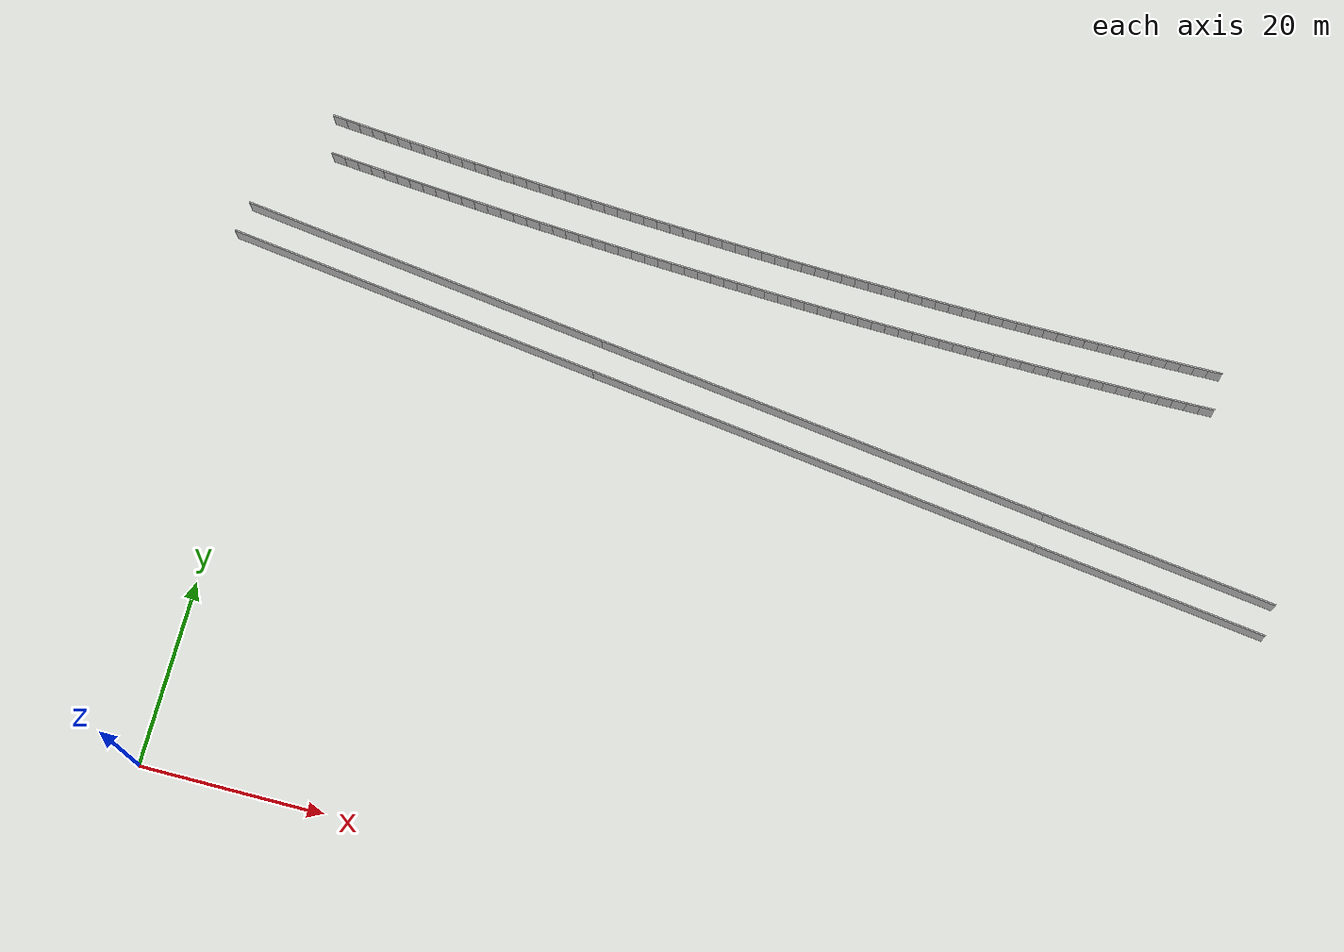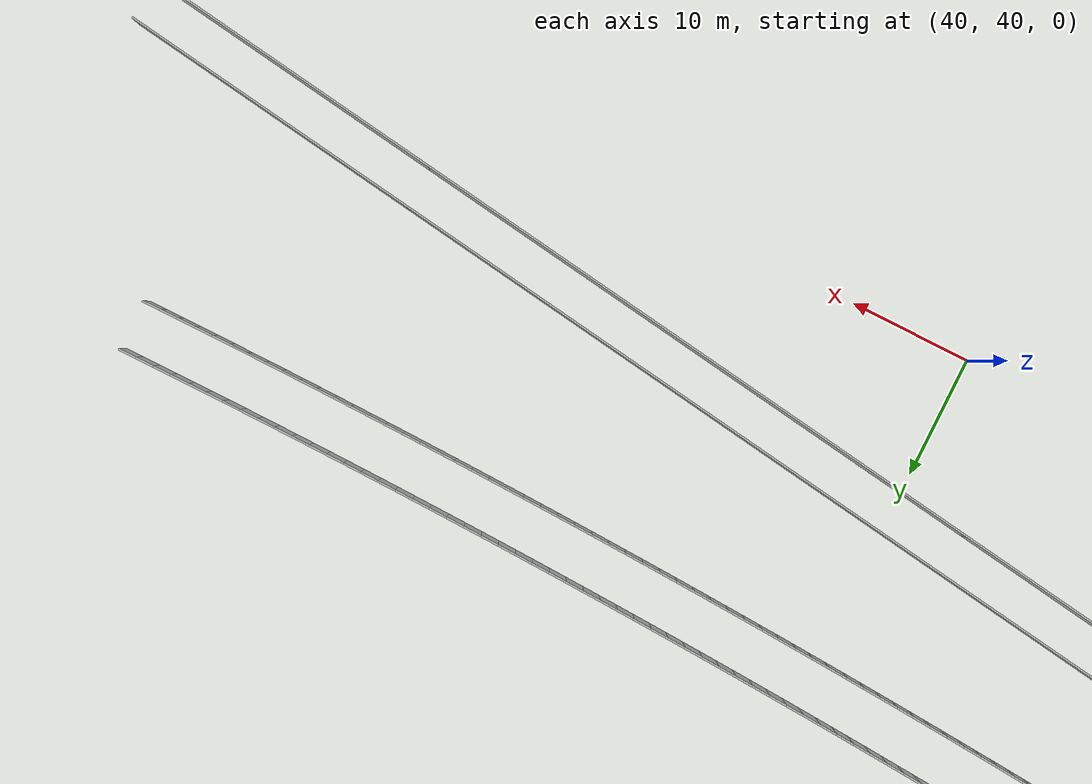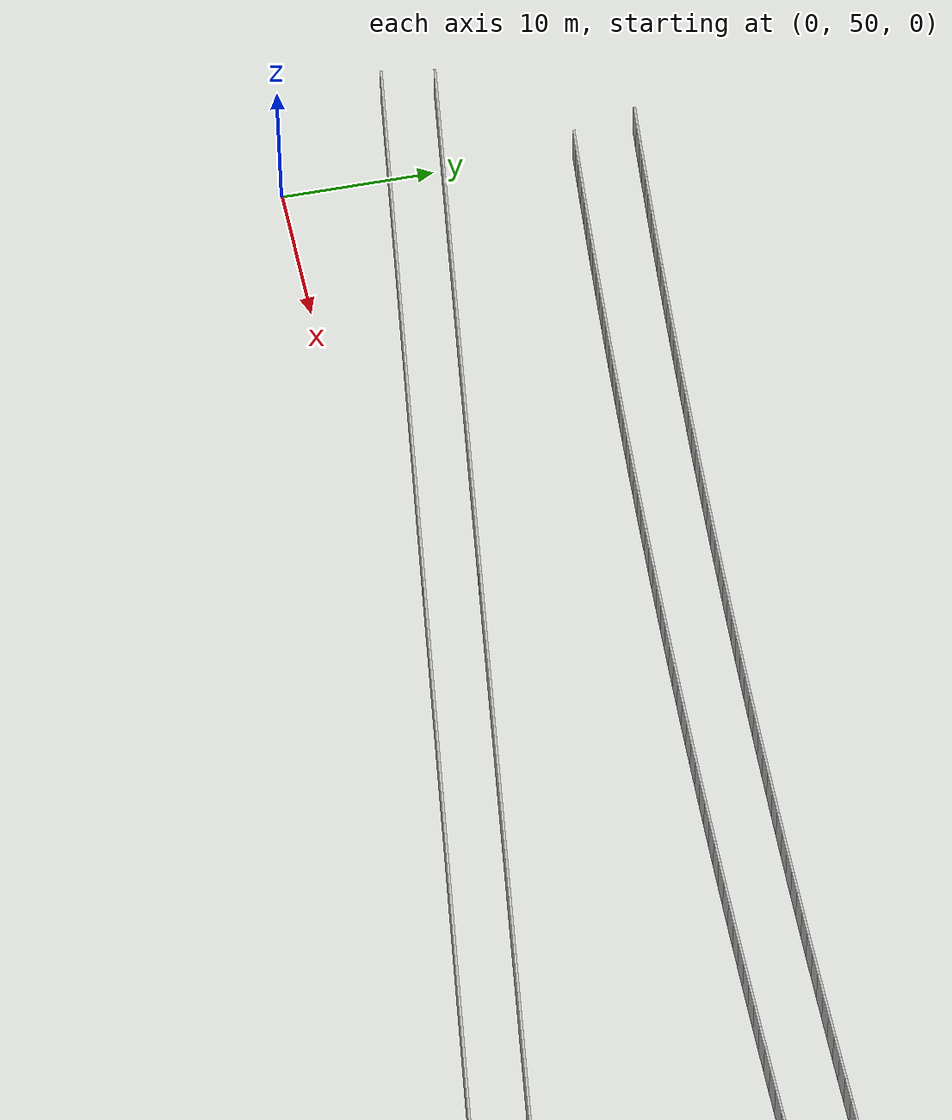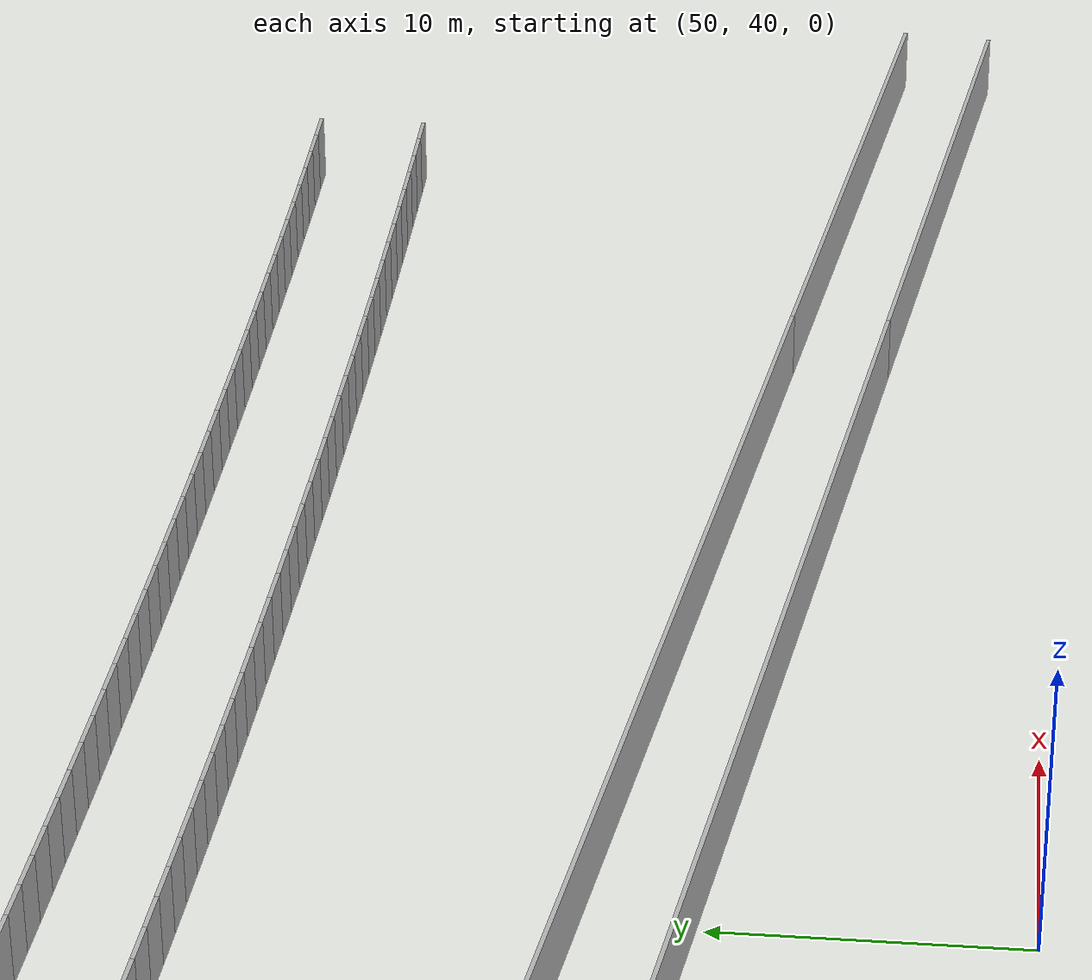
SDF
<sdf version="1.6">
 <model name="sps_1201">
  <static>1</static>
  <allow_auto_disable>0</allow_auto_disable>
  <link name="Wall303">
   <collision name="collision"><geometry><box><size>25.4413 0.15 2.5</size></box></geometry></collision>
   <visual name="visual">
    <geometry><box><size>25.4413 0.15 2.5</size></box></geometry>
    <transparency>0.0</transparency>
   </visual>
   <pose>97.077 44.005 1.25 0 -0 3.00818</pose>
  </link>
  <link name="Wall304">
   <collision name="collision"><geometry><box><size>50.4483 0.15 2.5</size></box></geometry></collision>
   <visual name="visual">
    <geometry><box><size>50.4483 0.15 2.5</size></box></geometry>
    <transparency>0.0</transparency>
   </visual>
   <pose>59.4694 49.0525 1.25 0 -0 3.00818</pose>
  </link>
  <link name="Wall305">
   <collision name="collision"><geometry><box><size>41.997 0.15 2.5</size></box></geometry></collision>
   <visual name="visual">
    <geometry><box><size>41.997 0.15 2.5</size></box></geometry>
    <transparency>0.0</transparency>
   </visual>
   <pose>13.6576 55.201 1.25 0 -0 3.00818</pose>
  </link>
  <link name="Wall559">
   <collision name="collision"><geometry><box><size>41.4314 0.15 2.5</size></box></geometry></collision>
   <visual name="visual">
    <geometry><box><size>41.4314 0.15 2.5</size></box></geometry>
    <transparency>0.0</transparency>
   </visual>
   <pose>13.9379 58.6946 1.25 0 0 -0.133417</pose>
  </link>
  <link name="Wall560">
   <collision name="collision"><geometry><box><size>50.4483 0.15 2.5</size></box></geometry></collision>
   <visual name="visual">
    <geometry><box><size>50.4483 0.15 2.5</size></box></geometry>
    <transparency>0.0</transparency>
   </visual>
   <pose>59.4694 52.5837 1.25 0 0 -0.133417</pose>
  </link>
  <link name="Wall561">
   <collision name="collision"><geometry><box><size>25.8198 0.15 2.5</size></box></geometry></collision>
   <visual name="visual">
    <geometry><box><size>25.8198 0.15 2.5</size></box></geometry>
    <transparency>0.0</transparency>
   </visual>
   <pose>97.2646 47.511 1.25 0 0 -0.133417</pose>
  </link>
  <link name="Wall3644">
   <collision name="collision"><geometry><box><size>1.49647 0.15 2.5</size></box></geometry></collision>
   <visual name="visual">
    <geometry><box><size>1.49647 0.15 2.5</size></box></geometry>
    <transparency>0.0</transparency>
   </visual>
   <pose>0.0590432 73.3704 1.25 0 0 -0.0957077</pose>
  </link>
  <link name="Wall3645">
   <collision name="collision"><geometry><box><size>1.49661 0.15 2.5</size></box></geometry></collision>
   <visual name="visual">
    <geometry><box><size>1.49661 0.15 2.5</size></box></geometry>
    <transparency>0.0</transparency>
   </visual>
   <pose>1.54885 73.2286 1.25 0 0 -0.0941011</pose>
  </link>
  <link name="Wall3646">
   <collision name="collision"><geometry><box><size>1.4964 0.15 2.5</size></box></geometry></collision>
   <visual name="visual">
    <geometry><box><size>1.4964 0.15 2.5</size></box></geometry>
    <transparency>0.0</transparency>
   </visual>
   <pose>3.03884 73.0891 1.25 0 0 -0.0925986</pose>
  </link>
  <link name="Wall3647">
   <collision name="collision"><geometry><box><size>1.49661 0.15 2.5</size></box></geometry></collision>
   <visual name="visual">
    <geometry><box><size>1.49661 0.15 2.5</size></box></geometry>
    <transparency>0.0</transparency>
   </visual>
   <pose>4.52904 72.9519 1.25 0 0 -0.0910291</pose>
  </link>
  <link name="Wall3648">
   <collision name="collision"><geometry><box><size>1.49655 0.15 2.5</size></box></geometry></collision>
   <visual name="visual">
    <geometry><box><size>1.49655 0.15 2.5</size></box></geometry>
    <transparency>0.0</transparency>
   </visual>
   <pose>6.01955 72.8172 1.25 0 0 -0.0892309</pose>
  </link>
  <link name="Wall3649">
   <collision name="collision"><geometry><box><size>1.49655 0.15 2.5</size></box></geometry></collision>
   <visual name="visual">
    <geometry><box><size>1.49655 0.15 2.5</size></box></geometry>
    <transparency>0.0</transparency>
   </visual>
   <pose>7.51025 72.6849 1.25 0 0 -0.0877983</pose>
  </link>
  <link name="Wall3650">
   <collision name="collision"><geometry><box><size>1.49659 0.15 2.5</size></box></geometry></collision>
   <visual name="visual">
    <geometry><box><size>1.49659 0.15 2.5</size></box></geometry>
    <transparency>0.0</transparency>
   </visual>
   <pose>9.00115 72.5548 1.25 0 0 -0.0862808</pose>
  </link>
  <link name="Wall3651">
   <collision name="collision"><geometry><box><size>1.49632 0.15 2.5</size></box></geometry></collision>
   <visual name="visual">
    <geometry><box><size>1.49632 0.15 2.5</size></box></geometry>
    <transparency>0.0</transparency>
   </visual>
   <pose>10.4921 72.4271 1.25 0 0 -0.0845775</pose>
  </link>
  <link name="Wall3652">
   <collision name="collision"><geometry><box><size>1.49656 0.15 2.5</size></box></geometry></collision>
   <visual name="visual">
    <geometry><box><size>1.49656 0.15 2.5</size></box></geometry>
    <transparency>0.0</transparency>
   </visual>
   <pose>11.9833 72.3018 1.25 0 0 -0.0830904</pose>
  </link>
  <link name="Wall3653">
   <collision name="collision"><geometry><box><size>1.4966 0.15 2.5</size></box></geometry></collision>
   <visual name="visual">
    <geometry><box><size>1.4966 0.15 2.5</size></box></geometry>
    <transparency>0.0</transparency>
   </visual>
   <pose>13.4748 72.1788 1.25 0 0 -0.0814919</pose>
  </link>
  <link name="Wall3654">
   <collision name="collision"><geometry><box><size>1.49633 0.15 2.5</size></box></geometry></collision>
   <visual name="visual">
    <geometry><box><size>1.49633 0.15 2.5</size></box></geometry>
    <transparency>0.0</transparency>
   </visual>
   <pose>14.9665 72.0583 1.25 0 0 -0.079747</pose>
  </link>
  <link name="Wall3655">
   <collision name="collision"><geometry><box><size>1.4966 0.15 2.5</size></box></geometry></collision>
   <visual name="visual">
    <geometry><box><size>1.4966 0.15 2.5</size></box></geometry>
    <transparency>0.0</transparency>
   </visual>
   <pose>16.4582 71.9401 1.25 0 0 -0.0783827</pose>
  </link>
  <link name="Wall3656">
   <collision name="collision"><geometry><box><size>1.4966 0.15 2.5</size></box></geometry></collision>
   <visual name="visual">
    <geometry><box><size>1.4966 0.15 2.5</size></box></geometry>
    <transparency>0.0</transparency>
   </visual>
   <pose>17.9503 71.8241 1.25 0 0 -0.0767875</pose>
  </link>
  <link name="Wall3657">
   <collision name="collision"><geometry><box><size>1.49646 0.15 2.5</size></box></geometry></collision>
   <visual name="visual">
    <geometry><box><size>1.49646 0.15 2.5</size></box></geometry>
    <transparency>0.0</transparency>
   </visual>
   <pose>19.4426 71.7106 1.25 0 0 -0.0750358</pose>
  </link>
  <link name="Wall3658">
   <collision name="collision"><geometry><box><size>1.4966 0.15 2.5</size></box></geometry></collision>
   <visual name="visual">
    <geometry><box><size>1.4966 0.15 2.5</size></box></geometry>
    <transparency>0.0</transparency>
   </visual>
   <pose>20.935 71.5995 1.25 0 0 -0.0735564</pose>
  </link>
  <link name="Wall3659">
   <collision name="collision"><geometry><box><size>1.49648 0.15 2.5</size></box></geometry></collision>
   <visual name="visual">
    <geometry><box><size>1.49648 0.15 2.5</size></box></geometry>
    <transparency>0.0</transparency>
   </visual>
   <pose>22.4275 71.4908 1.25 0 0 -0.0718451</pose>
  </link>
  <link name="Wall3660">
   <collision name="collision"><geometry><box><size>1.4965 0.15 2.5</size></box></geometry></collision>
   <visual name="visual">
    <geometry><box><size>1.4965 0.15 2.5</size></box></geometry>
    <transparency>0.0</transparency>
   </visual>
   <pose>23.9202 71.3845 1.25 0 0 -0.0703718</pose>
  </link>
  <link name="Wall3661">
   <collision name="collision"><geometry><box><size>1.49653 0.15 2.5</size></box></geometry></collision>
   <visual name="visual">
    <geometry><box><size>1.49653 0.15 2.5</size></box></geometry>
    <transparency>0.0</transparency>
   </visual>
   <pose>25.4131 71.2804 1.25 0 0 -0.0688579</pose>
  </link>
  <link name="Wall3662">
   <collision name="collision"><geometry><box><size>1.49641 0.15 2.5</size></box></geometry></collision>
   <visual name="visual">
    <geometry><box><size>1.49641 0.15 2.5</size></box></geometry>
    <transparency>0.0</transparency>
   </visual>
   <pose>26.9062 71.1787 1.25 0 0 -0.0671461</pose>
  </link>
  <link name="Wall3663">
   <collision name="collision"><geometry><box><size>1.49663 0.15 2.5</size></box></geometry></collision>
   <visual name="visual">
    <geometry><box><size>1.49663 0.15 2.5</size></box></geometry>
    <transparency>0.0</transparency>
   </visual>
   <pose>28.3994 71.0794 1.25 0 0 -0.0656648</pose>
  </link>
  <link name="Wall3664">
   <collision name="collision"><geometry><box><size>1.49642 0.15 2.5</size></box></geometry></collision>
   <visual name="visual">
    <geometry><box><size>1.49642 0.15 2.5</size></box></geometry>
    <transparency>0.0</transparency>
   </visual>
   <pose>29.8928 70.9824 1.25 0 0 -0.0640802</pose>
  </link>
  <link name="Wall3665">
   <collision name="collision"><geometry><box><size>1.49657 0.15 2.5</size></box></geometry></collision>
   <visual name="visual">
    <geometry><box><size>1.49657 0.15 2.5</size></box></geometry>
    <transparency>0.0</transparency>
   </visual>
   <pose>31.3863 70.8878 1.25 0 0 -0.0624392</pose>
  </link>
  <link name="Wall3666">
   <collision name="collision"><geometry><box><size>1.49654 0.15 2.5</size></box></geometry></collision>
   <visual name="visual">
    <geometry><box><size>1.49654 0.15 2.5</size></box></geometry>
    <transparency>0.0</transparency>
   </visual>
   <pose>32.88 70.7956 1.25 0 0 -0.0608466</pose>
  </link>
  <link name="Wall3667">
   <collision name="collision"><geometry><box><size>1.49641 0.15 2.5</size></box></geometry></collision>
   <visual name="visual">
    <geometry><box><size>1.49641 0.15 2.5</size></box></geometry>
    <transparency>0.0</transparency>
   </visual>
   <pose>34.3737 70.7057 1.25 0 0 -0.059381</pose>
  </link>
  <link name="Wall3668">
   <collision name="collision"><geometry><box><size>1.49668 0.15 2.5</size></box></geometry></collision>
   <visual name="visual">
    <geometry><box><size>1.49668 0.15 2.5</size></box></geometry>
    <transparency>0.0</transparency>
   </visual>
   <pose>35.8677 70.6182 1.25 0 0 -0.0576136</pose>
  </link>
  <link name="Wall3669">
   <collision name="collision"><geometry><box><size>1.49638 0.15 2.5</size></box></geometry></collision>
   <visual name="visual">
    <geometry><box><size>1.49638 0.15 2.5</size></box></geometry>
    <transparency>0.0</transparency>
   </visual>
   <pose>37.3618 70.5331 1.25 0 0 -0.0561546</pose>
  </link>
  <link name="Wall3670">
   <collision name="collision"><geometry><box><size>1.49661 0.15 2.5</size></box></geometry></collision>
   <visual name="visual">
    <geometry><box><size>1.49661 0.15 2.5</size></box></geometry>
    <transparency>0.0</transparency>
   </visual>
   <pose>38.856 70.4503 1.25 0 0 -0.0545529</pose>
  </link>
  <link name="Wall3671">
   <collision name="collision"><geometry><box><size>1.49654 0.15 2.5</size></box></geometry></collision>
   <visual name="visual">
    <geometry><box><size>1.49654 0.15 2.5</size></box></geometry>
    <transparency>0.0</transparency>
   </visual>
   <pose>40.3505 70.3699 1.25 0 0 -0.0529625</pose>
  </link>
  <link name="Wall3672">
   <collision name="collision"><geometry><box><size>1.49653 0.15 2.5</size></box></geometry></collision>
   <visual name="visual">
    <geometry><box><size>1.49653 0.15 2.5</size></box></geometry>
    <transparency>0.0</transparency>
   </visual>
   <pose>41.845 70.292 1.25 0 0 -0.0512069</pose>
  </link>
  <link name="Wall3673">
   <collision name="collision"><geometry><box><size>1.49649 0.15 2.5</size></box></geometry></collision>
   <visual name="visual">
    <geometry><box><size>1.49649 0.15 2.5</size></box></geometry>
    <transparency>0.0</transparency>
   </visual>
   <pose>43.3396 70.2164 1.25 0 0 -0.0498606</pose>
  </link>
  <link name="Wall3674">
   <collision name="collision"><geometry><box><size>1.49649 0.15 2.5</size></box></geometry></collision>
   <visual name="visual">
    <geometry><box><size>1.49649 0.15 2.5</size></box></geometry>
    <transparency>0.0</transparency>
   </visual>
   <pose>44.8343 70.1431 1.25 0 0 -0.0481457</pose>
  </link>
  <link name="Wall3675">
   <collision name="collision"><geometry><box><size>1.49667 0.15 2.5</size></box></geometry></collision>
   <visual name="visual">
    <geometry><box><size>1.49667 0.15 2.5</size></box></geometry>
    <transparency>0.0</transparency>
   </visual>
   <pose>46.3292 70.0723 1.25 0 0 -0.0465066</pose>
  </link>
  <link name="Wall3676">
   <collision name="collision"><geometry><box><size>1.49651 0.15 2.5</size></box></geometry></collision>
   <visual name="visual">
    <geometry><box><size>1.49651 0.15 2.5</size></box></geometry>
    <transparency>0.0</transparency>
   </visual>
   <pose>47.8242 70.0038 1.25 0 0 -0.0450418</pose>
  </link>
  <link name="Wall3677">
   <collision name="collision"><geometry><box><size>1.49659 0.15 2.5</size></box></geometry></collision>
   <visual name="visual">
    <geometry><box><size>1.49659 0.15 2.5</size></box></geometry>
    <transparency>0.0</transparency>
   </visual>
   <pose>49.3193 69.9376 1.25 0 0 -0.0434474</pose>
  </link>
  <link name="Wall3678">
   <collision name="collision"><geometry><box><size>1.49649 0.15 2.5</size></box></geometry></collision>
   <visual name="visual">
    <geometry><box><size>1.49649 0.15 2.5</size></box></geometry>
    <transparency>0.0</transparency>
   </visual>
   <pose>50.8144 69.8738 1.25 0 0 -0.0418582</pose>
  </link>
  <link name="Wall3679">
   <collision name="collision"><geometry><box><size>1.49645 0.15 2.5</size></box></geometry></collision>
   <visual name="visual">
    <geometry><box><size>1.49645 0.15 2.5</size></box></geometry>
    <transparency>0.0</transparency>
   </visual>
   <pose>52.3097 69.8124 1.25 0 0 -0.0402265</pose>
  </link>
  <link name="Wall3680">
   <collision name="collision"><geometry><box><size>1.49649 0.15 2.5</size></box></geometry></collision>
   <visual name="visual">
    <geometry><box><size>1.49649 0.15 2.5</size></box></geometry>
    <transparency>0.0</transparency>
   </visual>
   <pose>53.805 69.7533 1.25 0 0 -0.0387561</pose>
  </link>
  <link name="Wall3681">
   <collision name="collision"><geometry><box><size>1.49663 0.15 2.5</size></box></geometry></collision>
   <visual name="visual">
    <geometry><box><size>1.49663 0.15 2.5</size></box></geometry>
    <transparency>0.0</transparency>
   </visual>
   <pose>55.3004 69.6966 1.25 0 0 -0.0370382</pose>
  </link>
  <link name="Wall3682">
   <collision name="collision"><geometry><box><size>1.49655 0.15 2.5</size></box></geometry></collision>
   <visual name="visual">
    <geometry><box><size>1.49655 0.15 2.5</size></box></geometry>
    <transparency>0.0</transparency>
   </visual>
   <pose>56.796 69.6423 1.25 0 0 -0.035571</pose>
  </link>
  <link name="Wall3683">
   <collision name="collision"><geometry><box><size>1.49647 0.15 2.5</size></box></geometry></collision>
   <visual name="visual">
    <geometry><box><size>1.49647 0.15 2.5</size></box></geometry>
    <transparency>0.0</transparency>
   </visual>
   <pose>58.2916 69.5903 1.25 0 0 -0.0339406</pose>
  </link>
  <link name="Wall3684">
   <collision name="collision"><geometry><box><size>1.49657 0.15 2.5</size></box></geometry></collision>
   <visual name="visual">
    <geometry><box><size>1.49657 0.15 2.5</size></box></geometry>
    <transparency>0.0</transparency>
   </visual>
   <pose>59.7873 69.5407 1.25 0 0 -0.0323468</pose>
  </link>
  <link name="Wall3685">
   <collision name="collision"><geometry><box><size>1.4965 0.15 2.5</size></box></geometry></collision>
   <visual name="visual">
    <geometry><box><size>1.4965 0.15 2.5</size></box></geometry>
    <transparency>0.0</transparency>
   </visual>
   <pose>61.2831 69.4935 1.25 0 0 -0.030757</pose>
  </link>
  <link name="Wall3686">
   <collision name="collision"><geometry><box><size>1.49648 0.15 2.5</size></box></geometry></collision>
   <visual name="visual">
    <geometry><box><size>1.49648 0.15 2.5</size></box></geometry>
    <transparency>0.0</transparency>
   </visual>
   <pose>62.779 69.4487 1.25 0 0 -0.0291251</pose>
  </link>
  <link name="Wall3687">
   <collision name="collision"><geometry><box><size>1.49654 0.15 2.5</size></box></geometry></collision>
   <visual name="visual">
    <geometry><box><size>1.49654 0.15 2.5</size></box></geometry>
    <transparency>0.0</transparency>
   </visual>
   <pose>64.2749 69.4063 1.25 0 0 -0.0275328</pose>
  </link>
  <link name="Wall3688">
   <collision name="collision"><geometry><box><size>1.49654 0.15 2.5</size></box></geometry></collision>
   <visual name="visual">
    <geometry><box><size>1.49654 0.15 2.5</size></box></geometry>
    <transparency>0.0</transparency>
   </visual>
   <pose>65.7709 69.3662 1.25 0 0 -0.026064</pose>
  </link>
  <link name="Wall3689">
   <collision name="collision"><geometry><box><size>1.4966 0.15 2.5</size></box></geometry></collision>
   <visual name="visual">
    <geometry><box><size>1.4966 0.15 2.5</size></box></geometry>
    <transparency>0.0</transparency>
   </visual>
   <pose>67.267 69.3284 1.25 0 0 -0.0244719</pose>
  </link>
  <link name="Wall3690">
   <collision name="collision"><geometry><box><size>1.49642 0.15 2.5</size></box></geometry></collision>
   <visual name="visual">
    <geometry><box><size>1.49642 0.15 2.5</size></box></geometry>
    <transparency>0.0</transparency>
   </visual>
   <pose>68.7631 69.2931 1.25 0 0 -0.0227206</pose>
  </link>
  <link name="Wall3691">
   <collision name="collision"><geometry><box><size>1.49655 0.15 2.5</size></box></geometry></collision>
   <visual name="visual">
    <geometry><box><size>1.49655 0.15 2.5</size></box></geometry>
    <transparency>0.0</transparency>
   </visual>
   <pose>70.2592 69.2602 1.25 0 0 -0.02125</pose>
  </link>
  <link name="Wall3692">
   <collision name="collision"><geometry><box><size>1.49645 0.15 2.5</size></box></geometry></collision>
   <visual name="visual">
    <geometry><box><size>1.49645 0.15 2.5</size></box></geometry>
    <transparency>0.0</transparency>
   </visual>
   <pose>71.7554 69.2295 1.25 0 0 -0.0197828</pose>
  </link>
  <link name="Wall3693">
   <collision name="collision"><geometry><box><size>1.49646 0.15 2.5</size></box></geometry></collision>
   <visual name="visual">
    <geometry><box><size>1.49646 0.15 2.5</size></box></geometry>
    <transparency>0.0</transparency>
   </visual>
   <pose>73.2515 69.2012 1.25 0 0 -0.0180286</pose>
  </link>
  <link name="Wall3694">
   <collision name="collision"><geometry><box><size>1.4966 0.15 2.5</size></box></geometry></collision>
   <visual name="visual">
    <geometry><box><size>1.4966 0.15 2.5</size></box></geometry>
    <transparency>0.0</transparency>
   </visual>
   <pose>74.7479 69.1754 1.25 0 0 -0.0164361</pose>
  </link>
  <link name="Wall3695">
   <collision name="collision"><geometry><box><size>1.49657 0.15 2.5</size></box></geometry></collision>
   <visual name="visual">
    <geometry><box><size>1.49657 0.15 2.5</size></box></geometry>
    <transparency>0.0</transparency>
   </visual>
   <pose>76.2443 69.1519 1.25 0 0 -0.0149681</pose>
  </link>
  <link name="Wall3696">
   <collision name="collision"><geometry><box><size>1.49653 0.15 2.5</size></box></geometry></collision>
   <visual name="visual">
    <geometry><box><size>1.49653 0.15 2.5</size></box></geometry>
    <transparency>0.0</transparency>
   </visual>
   <pose>77.7407 69.1307 1.25 0 0 -0.0133777</pose>
  </link>
  <link name="Wall3697">
   <collision name="collision"><geometry><box><size>1.49668 0.15 2.5</size></box></geometry></collision>
   <visual name="visual">
    <geometry><box><size>1.49668 0.15 2.5</size></box></geometry>
    <transparency>0.0</transparency>
   </visual>
   <pose>79.2371 69.112 1.25 0 0 -0.0116226</pose>
  </link>
  <link name="Wall3698">
   <collision name="collision"><geometry><box><size>1.49648 0.15 2.5</size></box></geometry></collision>
   <visual name="visual">
    <geometry><box><size>1.49648 0.15 2.5</size></box></geometry>
    <transparency>0.0</transparency>
   </visual>
   <pose>80.7336 69.0957 1.25 0 0 -0.0101559</pose>
  </link>
  <link name="Wall3699">
   <collision name="collision"><geometry><box><size>1.49645 0.15 2.5</size></box></geometry></collision>
   <visual name="visual">
    <geometry><box><size>1.49645 0.15 2.5</size></box></geometry>
    <transparency>0.0</transparency>
   </visual>
   <pose>82.23 69.0817 1.25 0 0 -0.00856528</pose>
  </link>
  <link name="Wall3700">
   <collision name="collision"><geometry><box><size>1.49644 0.15 2.5</size></box></geometry></collision>
   <visual name="visual">
    <geometry><box><size>1.49644 0.15 2.5</size></box></geometry>
    <transparency>0.0</transparency>
   </visual>
   <pose>83.7264 69.07 1.25 0 0 -0.00705621</pose>
  </link>
  <link name="Wall3701">
   <collision name="collision"><geometry><box><size>1.49666 0.15 2.5</size></box></geometry></collision>
   <visual name="visual">
    <geometry><box><size>1.49666 0.15 2.5</size></box></geometry>
    <transparency>0.0</transparency>
   </visual>
   <pose>85.223 69.0607 1.25 0 0 -0.00534231</pose>
  </link>
  <link name="Wall3702">
   <collision name="collision"><geometry><box><size>1.49659 0.15 2.5</size></box></geometry></collision>
   <visual name="visual">
    <geometry><box><size>1.49659 0.15 2.5</size></box></geometry>
    <transparency>0.0</transparency>
   </visual>
   <pose>86.7196 69.0538 1.25 0 0 -0.00387437</pose>
  </link>
  <link name="Wall3703">
   <collision name="collision"><geometry><box><size>1.4964 0.15 2.5</size></box></geometry></collision>
   <visual name="visual">
    <geometry><box><size>1.4964 0.15 2.5</size></box></geometry>
    <transparency>0.0</transparency>
   </visual>
   <pose>88.2161 69.0492 1.25 0 0 -0.00228413</pose>
  </link>
  <link name="Wall3704">
   <collision name="collision"><geometry><box><size>1.49658 0.15 2.5</size></box></geometry></collision>
   <visual name="visual">
    <geometry><box><size>1.49658 0.15 2.5</size></box></geometry>
    <transparency>0.0</transparency>
   </visual>
   <pose>89.7125 69.0471 1.25 0 0 -0.000530179</pose>
  </link>
  <link name="Wall3705">
   <collision name="collision"><geometry><box><size>1.49664 0.15 2.5</size></box></geometry></collision>
   <visual name="visual">
    <geometry><box><size>1.49664 0.15 2.5</size></box></geometry>
    <transparency>0.0</transparency>
   </visual>
   <pose>91.2092 69.0474 1.25 0 -0 0.000937972</pose>
  </link>
  <link name="Wall3706">
   <collision name="collision"><geometry><box><size>1.4964 0.15 2.5</size></box></geometry></collision>
   <visual name="visual">
    <geometry><box><size>1.4964 0.15 2.5</size></box></geometry>
    <transparency>0.0</transparency>
   </visual>
   <pose>92.7057 69.0499 1.25 0 -0 0.00240649</pose>
  </link>
  <link name="Wall3707">
   <collision name="collision"><geometry><box><size>1.49659 0.15 2.5</size></box></geometry></collision>
   <visual name="visual">
    <geometry><box><size>1.49659 0.15 2.5</size></box></geometry>
    <transparency>0.0</transparency>
   </visual>
   <pose>94.2022 69.0548 1.25 0 -0 0.00411906</pose>
  </link>
  <link name="Wall3708">
   <collision name="collision"><geometry><box><size>1.49642 0.15 2.5</size></box></geometry></collision>
   <visual name="visual">
    <geometry><box><size>1.49642 0.15 2.5</size></box></geometry>
    <transparency>0.0</transparency>
   </visual>
   <pose>95.6987 69.0622 1.25 0 -0 0.00575105</pose>
  </link>
  <link name="Wall3709">
   <collision name="collision"><geometry><box><size>1.49644 0.15 2.5</size></box></geometry></collision>
   <visual name="visual">
    <geometry><box><size>1.49644 0.15 2.5</size></box></geometry>
    <transparency>0.0</transparency>
   </visual>
   <pose>97.1951 69.0719 1.25 0 -0 0.00721936</pose>
  </link>
  <link name="Wall3710">
   <collision name="collision"><geometry><box><size>1.49664 0.15 2.5</size></box></geometry></collision>
   <visual name="visual">
    <geometry><box><size>1.49664 0.15 2.5</size></box></geometry>
    <transparency>0.0</transparency>
   </visual>
   <pose>98.6916 69.0839 1.25 0 -0 0.00880891</pose>
  </link>
  <link name="Wall7420">
   <collision name="collision"><geometry><box><size>1.50305 0.15 2.5</size></box></geometry></collision>
   <visual name="visual">
    <geometry><box><size>1.50305 0.15 2.5</size></box></geometry>
    <transparency>0.0</transparency>
   </visual>
   <pose>1.16344 69.1061 1.25 0 0 -0.0941047</pose>
  </link>
  <link name="Wall7421">
   <collision name="collision"><geometry><box><size>1.503 0.15 2.5</size></box></geometry></collision>
   <visual name="visual">
    <geometry><box><size>1.503 0.15 2.5</size></box></geometry>
    <transparency>0.0</transparency>
   </visual>
   <pose>2.65993 68.9661 1.25 0 0 -0.0924761</pose>
  </link>
  <link name="Wall7422">
   <collision name="collision"><geometry><box><size>1.50323 0.15 2.5</size></box></geometry></collision>
   <visual name="visual">
    <geometry><box><size>1.50323 0.15 2.5</size></box></geometry>
    <transparency>0.0</transparency>
   </visual>
   <pose>4.15673 68.8284 1.25 0 0 -0.0909944</pose>
  </link>
  <link name="Wall7423">
   <collision name="collision"><geometry><box><size>1.50301 0.15 2.5</size></box></geometry></collision>
   <visual name="visual">
    <geometry><box><size>1.50301 0.15 2.5</size></box></geometry>
    <transparency>0.0</transparency>
   </visual>
   <pose>5.65374 68.693 1.25 0 0 -0.0894172</pose>
  </link>
  <link name="Wall7424">
   <collision name="collision"><geometry><box><size>1.50298 0.15 2.5</size></box></geometry></collision>
   <visual name="visual">
    <geometry><box><size>1.50298 0.15 2.5</size></box></geometry>
    <transparency>0.0</transparency>
   </visual>
   <pose>7.15084 68.56 1.25 0 0 -0.0877885</pose>
  </link>
  <link name="Wall7425">
   <collision name="collision"><geometry><box><size>1.50302 0.15 2.5</size></box></geometry></collision>
   <visual name="visual">
    <geometry><box><size>1.50302 0.15 2.5</size></box></geometry>
    <transparency>0.0</transparency>
   </visual>
   <pose>8.64815 68.4294 1.25 0 0 -0.0861966</pose>
  </link>
  <link name="Wall7426">
   <collision name="collision"><geometry><box><size>1.50294 0.15 2.5</size></box></geometry></collision>
   <visual name="visual">
    <geometry><box><size>1.50294 0.15 2.5</size></box></geometry>
    <transparency>0.0</transparency>
   </visual>
   <pose>10.1457 68.3012 1.25 0 0 -0.0846117</pose>
  </link>
  <link name="Wall7427">
   <collision name="collision"><geometry><box><size>1.50324 0.15 2.5</size></box></geometry></collision>
   <visual name="visual">
    <geometry><box><size>1.50324 0.15 2.5</size></box></geometry>
    <transparency>0.0</transparency>
   </visual>
   <pose>11.6435 68.1753 1.25 0 0 -0.0831277</pose>
  </link>
  <link name="Wall7428">
   <collision name="collision"><geometry><box><size>1.50314 0.15 2.5</size></box></geometry></collision>
   <visual name="visual">
    <geometry><box><size>1.50314 0.15 2.5</size></box></geometry>
    <transparency>0.0</transparency>
   </visual>
   <pose>13.1416 68.0518 1.25 0 0 -0.081381</pose>
  </link>
  <link name="Wall7429">
   <collision name="collision"><geometry><box><size>1.50321 0.15 2.5</size></box></geometry></collision>
   <visual name="visual">
    <geometry><box><size>1.50321 0.15 2.5</size></box></geometry>
    <transparency>0.0</transparency>
   </visual>
   <pose>14.6399 67.9307 1.25 0 0 -0.0799109</pose>
  </link>
  <link name="Wall7430">
   <collision name="collision"><geometry><box><size>1.50302 0.15 2.5</size></box></geometry></collision>
   <visual name="visual">
    <geometry><box><size>1.50302 0.15 2.5</size></box></geometry>
    <transparency>0.0</transparency>
   </visual>
   <pose>16.1383 67.8119 1.25 0 0 -0.0783323</pose>
  </link>
  <link name="Wall7431">
   <collision name="collision"><geometry><box><size>1.50302 0.15 2.5</size></box></geometry></collision>
   <visual name="visual">
    <geometry><box><size>1.50302 0.15 2.5</size></box></geometry>
    <transparency>0.0</transparency>
   </visual>
   <pose>17.6368 67.6955 1.25 0 0 -0.0767034</pose>
  </link>
  <link name="Wall7432">
   <collision name="collision"><geometry><box><size>1.50302 0.15 2.5</size></box></geometry></collision>
   <visual name="visual">
    <geometry><box><size>1.50302 0.15 2.5</size></box></geometry>
    <transparency>0.0</transparency>
   </visual>
   <pose>19.1355 67.5815 1.25 0 0 -0.075115</pose>
  </link>
  <link name="Wall7433">
   <collision name="collision"><geometry><box><size>1.50327 0.15 2.5</size></box></geometry></collision>
   <visual name="visual">
    <geometry><box><size>1.50327 0.15 2.5</size></box></geometry>
    <transparency>0.0</transparency>
   </visual>
   <pose>20.6345 67.4699 1.25 0 0 -0.0735146</pose>
  </link>
  <link name="Wall7434">
   <collision name="collision"><geometry><box><size>1.50309 0.15 2.5</size></box></geometry></collision>
   <visual name="visual">
    <geometry><box><size>1.50309 0.15 2.5</size></box></geometry>
    <transparency>0.0</transparency>
   </visual>
   <pose>22.1337 67.3607 1.25 0 0 -0.0718948</pose>
  </link>
  <link name="Wall7435">
   <collision name="collision"><geometry><box><size>1.50311 0.15 2.5</size></box></geometry></collision>
   <visual name="visual">
    <geometry><box><size>1.50311 0.15 2.5</size></box></geometry>
    <transparency>0.0</transparency>
   </visual>
   <pose>23.633 67.2539 1.25 0 0 -0.070347</pose>
  </link>
  <link name="Wall7436">
   <collision name="collision"><geometry><box><size>1.50295 0.15 2.5</size></box></geometry></collision>
   <visual name="visual">
    <geometry><box><size>1.50295 0.15 2.5</size></box></geometry>
    <transparency>0.0</transparency>
   </visual>
   <pose>25.1323 67.1494 1.25 0 0 -0.0688481</pose>
  </link>
  <link name="Wall7437">
   <collision name="collision"><geometry><box><size>1.5032 0.15 2.5</size></box></geometry></collision>
   <visual name="visual">
    <geometry><box><size>1.5032 0.15 2.5</size></box></geometry>
    <transparency>0.0</transparency>
   </visual>
   <pose>26.6319 67.0473 1.25 0 0 -0.0670867</pose>
  </link>
  <link name="Wall7438">
   <collision name="collision"><geometry><box><size>1.50306 0.15 2.5</size></box></geometry></collision>
   <visual name="visual">
    <geometry><box><size>1.50306 0.15 2.5</size></box></geometry>
    <transparency>0.0</transparency>
   </visual>
   <pose>28.1318 66.9476 1.25 0 0 -0.0656687</pose>
  </link>
  <link name="Wall7439">
   <collision name="collision"><geometry><box><size>1.50308 0.15 2.5</size></box></geometry></collision>
   <visual name="visual">
    <geometry><box><size>1.50308 0.15 2.5</size></box></geometry>
    <transparency>0.0</transparency>
   </visual>
   <pose>29.6317 66.8502 1.25 0 0 -0.0640399</pose>
  </link>
  <link name="Wall7440">
   <collision name="collision"><geometry><box><size>1.50311 0.15 2.5</size></box></geometry></collision>
   <visual name="visual">
    <geometry><box><size>1.50311 0.15 2.5</size></box></geometry>
    <transparency>0.0</transparency>
   </visual>
   <pose>31.1318 66.7552 1.25 0 0 -0.0624517</pose>
  </link>
  <link name="Wall7441">
   <collision name="collision"><geometry><box><size>1.50296 0.15 2.5</size></box></geometry></collision>
   <visual name="visual">
    <geometry><box><size>1.50296 0.15 2.5</size></box></geometry>
    <transparency>0.0</transparency>
   </visual>
   <pose>32.6319 66.6626 1.25 0 0 -0.0608305</pose>
  </link>
  <link name="Wall7442">
   <collision name="collision"><geometry><box><size>1.50306 0.15 2.5</size></box></geometry></collision>
   <visual name="visual">
    <geometry><box><size>1.50306 0.15 2.5</size></box></geometry>
    <transparency>0.0</transparency>
   </visual>
   <pose>34.1323 66.5724 1.25 0 0 -0.0592399</pose>
  </link>
  <link name="Wall7443">
   <collision name="collision"><geometry><box><size>1.50287 0.15 2.5</size></box></geometry></collision>
   <visual name="visual">
    <geometry><box><size>1.50287 0.15 2.5</size></box></geometry>
    <transparency>0.0</transparency>
   </visual>
   <pose>35.6327 66.4845 1.25 0 0 -0.0577828</pose>
  </link>
  <link name="Wall7444">
   <collision name="collision"><geometry><box><size>1.50316 0.15 2.5</size></box></geometry></collision>
   <visual name="visual">
    <geometry><box><size>1.50316 0.15 2.5</size></box></geometry>
    <transparency>0.0</transparency>
   </visual>
   <pose>37.1332 66.399 1.25 0 0 -0.0560638</pose>
  </link>
  <link name="Wall7445">
   <collision name="collision"><geometry><box><size>1.50309 0.15 2.5</size></box></geometry></collision>
   <visual name="visual">
    <geometry><box><size>1.50309 0.15 2.5</size></box></geometry>
    <transparency>0.0</transparency>
   </visual>
   <pose>38.6341 66.3159 1.25 0 0 -0.0545615</pose>
  </link>
  <link name="Wall7446">
   <collision name="collision"><geometry><box><size>1.50326 0.15 2.5</size></box></geometry></collision>
   <visual name="visual">
    <geometry><box><size>1.50326 0.15 2.5</size></box></geometry>
    <transparency>0.0</transparency>
   </visual>
   <pose>40.1351 66.2352 1.25 0 0 -0.0528477</pose>
  </link>
  <link name="Wall7447">
   <collision name="collision"><geometry><box><size>1.50302 0.15 2.5</size></box></geometry></collision>
   <visual name="visual">
    <geometry><box><size>1.50302 0.15 2.5</size></box></geometry>
    <transparency>0.0</transparency>
   </visual>
   <pose>41.6362 66.1569 1.25 0 0 -0.0513921</pose>
  </link>
  <link name="Wall7448">
   <collision name="collision"><geometry><box><size>1.50302 0.15 2.5</size></box></geometry></collision>
   <visual name="visual">
    <geometry><box><size>1.50302 0.15 2.5</size></box></geometry>
    <transparency>0.0</transparency>
   </visual>
   <pose>43.1373 66.0809 1.25 0 0 -0.0498063</pose>
  </link>
  <link name="Wall7449">
   <collision name="collision"><geometry><box><size>1.50315 0.15 2.5</size></box></geometry></collision>
   <visual name="visual">
    <geometry><box><size>1.50315 0.15 2.5</size></box></geometry>
    <transparency>0.0</transparency>
   </visual>
   <pose>44.6385 66.0073 1.25 0 0 -0.048176</pose>
  </link>
  <link name="Wall7450">
   <collision name="collision"><geometry><box><size>1.50285 0.15 2.5</size></box></geometry></collision>
   <visual name="visual">
    <geometry><box><size>1.50285 0.15 2.5</size></box></geometry>
    <transparency>0.0</transparency>
   </visual>
   <pose>46.1399 65.9361 1.25 0 0 -0.0465998</pose>
  </link>
  <link name="Wall7451">
   <collision name="collision"><geometry><box><size>1.50311 0.15 2.5</size></box></geometry></collision>
   <visual name="visual">
    <geometry><box><size>1.50311 0.15 2.5</size></box></geometry>
    <transparency>0.0</transparency>
   </visual>
   <pose>47.6413 65.8673 1.25 0 0 -0.044966</pose>
  </link>
  <link name="Wall7452">
   <collision name="collision"><geometry><box><size>1.50301 0.15 2.5</size></box></geometry></collision>
   <visual name="visual">
    <geometry><box><size>1.50301 0.15 2.5</size></box></geometry>
    <transparency>0.0</transparency>
   </visual>
   <pose>49.1428 65.8008 1.25 0 0 -0.0435461</pose>
  </link>
  <link name="Wall7453">
   <collision name="collision"><geometry><box><size>1.50314 0.15 2.5</size></box></geometry></collision>
   <visual name="visual">
    <geometry><box><size>1.50314 0.15 2.5</size></box></geometry>
    <transparency>0.0</transparency>
   </visual>
   <pose>50.6446 65.7367 1.25 0 0 -0.0417947</pose>
  </link>
  <link name="Wall7454">
   <collision name="collision"><geometry><box><size>1.50324 0.15 2.5</size></box></geometry></collision>
   <visual name="visual">
    <geometry><box><size>1.50324 0.15 2.5</size></box></geometry>
    <transparency>0.0</transparency>
   </visual>
   <pose>52.1465 65.675 1.25 0 0 -0.0403292</pose>
  </link>
  <link name="Wall7455">
   <collision name="collision"><geometry><box><size>1.50307 0.15 2.5</size></box></geometry></collision>
   <visual name="visual">
    <geometry><box><size>1.50307 0.15 2.5</size></box></geometry>
    <transparency>0.0</transparency>
   </visual>
   <pose>53.6485 65.6157 1.25 0 0 -0.0385862</pose>
  </link>
  <link name="Wall7456">
   <collision name="collision"><geometry><box><size>1.50323 0.15 2.5</size></box></geometry></collision>
   <visual name="visual">
    <geometry><box><size>1.50323 0.15 2.5</size></box></geometry>
    <transparency>0.0</transparency>
   </visual>
   <pose>55.1505 65.5588 1.25 0 0 -0.0371193</pose>
  </link>
  <link name="Wall7457">
   <collision name="collision"><geometry><box><size>1.50296 0.15 2.5</size></box></geometry></collision>
   <visual name="visual">
    <geometry><box><size>1.50296 0.15 2.5</size></box></geometry>
    <transparency>0.0</transparency>
   </visual>
   <pose>56.6526 65.5043 1.25 0 0 -0.0354194</pose>
  </link>
  <link name="Wall7458">
   <collision name="collision"><geometry><box><size>1.50307 0.15 2.5</size></box></geometry></collision>
   <visual name="visual">
    <geometry><box><size>1.50307 0.15 2.5</size></box></geometry>
    <transparency>0.0</transparency>
   </visual>
   <pose>58.1547 65.4521 1.25 0 0 -0.0340759</pose>
  </link>
  <link name="Wall7459">
   <collision name="collision"><geometry><box><size>1.50298 0.15 2.5</size></box></geometry></collision>
   <visual name="visual">
    <geometry><box><size>1.50298 0.15 2.5</size></box></geometry>
    <transparency>0.0</transparency>
   </visual>
   <pose>59.6569 65.4022 1.25 0 0 -0.0323307</pose>
  </link>
  <link name="Wall7460">
   <collision name="collision"><geometry><box><size>1.50315 0.15 2.5</size></box></geometry></collision>
   <visual name="visual">
    <geometry><box><size>1.50315 0.15 2.5</size></box></geometry>
    <transparency>0.0</transparency>
   </visual>
   <pose>61.1593 65.3548 1.25 0 0 -0.0307427</pose>
  </link>
  <link name="Wall7461">
   <collision name="collision"><geometry><box><size>1.50301 0.15 2.5</size></box></geometry></collision>
   <visual name="visual">
    <geometry><box><size>1.50301 0.15 2.5</size></box></geometry>
    <transparency>0.0</transparency>
   </visual>
   <pose>62.6617 65.3099 1.25 0 0 -0.0289986</pose>
  </link>
  <link name="Wall7462">
   <collision name="collision"><geometry><box><size>1.50313 0.15 2.5</size></box></geometry></collision>
   <visual name="visual">
    <geometry><box><size>1.50313 0.15 2.5</size></box></geometry>
    <transparency>0.0</transparency>
   </visual>
   <pose>64.1641 65.2674 1.25 0 0 -0.0275339</pose>
  </link>
  <link name="Wall7463">
   <collision name="collision"><geometry><box><size>1.50314 0.15 2.5</size></box></geometry></collision>
   <visual name="visual">
    <geometry><box><size>1.50314 0.15 2.5</size></box></geometry>
    <transparency>0.0</transparency>
   </visual>
   <pose>65.6667 65.2271 1.25 0 0 -0.0261121</pose>
  </link>
  <link name="Wall7464">
   <collision name="collision"><geometry><box><size>1.50307 0.15 2.5</size></box></geometry></collision>
   <visual name="visual">
    <geometry><box><size>1.50307 0.15 2.5</size></box></geometry>
    <transparency>0.0</transparency>
   </visual>
   <pose>67.1694 65.1892 1.25 0 0 -0.024326</pose>
  </link>
  <link name="Wall7465">
   <collision name="collision"><geometry><box><size>1.50296 0.15 2.5</size></box></geometry></collision>
   <visual name="visual">
    <geometry><box><size>1.50296 0.15 2.5</size></box></geometry>
    <transparency>0.0</transparency>
   </visual>
   <pose>68.672 65.1537 1.25 0 0 -0.0229061</pose>
  </link>
  <link name="Wall7466">
   <collision name="collision"><geometry><box><size>1.50314 0.15 2.5</size></box></geometry></collision>
   <visual name="visual">
    <geometry><box><size>1.50314 0.15 2.5</size></box></geometry>
    <transparency>0.0</transparency>
   </visual>
   <pose>70.1746 65.1206 1.25 0 0 -0.0211568</pose>
  </link>
  <link name="Wall7467">
   <collision name="collision"><geometry><box><size>1.5031 0.15 2.5</size></box></geometry></collision>
   <visual name="visual">
    <geometry><box><size>1.5031 0.15 2.5</size></box></geometry>
    <transparency>0.0</transparency>
   </visual>
   <pose>71.6775 65.0899 1.25 0 0 -0.0196953</pose>
  </link>
  <link name="Wall7468">
   <collision name="collision"><geometry><box><size>1.50305 0.15 2.5</size></box></geometry></collision>
   <visual name="visual">
    <geometry><box><size>1.50305 0.15 2.5</size></box></geometry>
    <transparency>0.0</transparency>
   </visual>
   <pose>73.1803 65.0615 1.25 0 0 -0.0181119</pose>
  </link>
  <link name="Wall7469">
   <collision name="collision"><geometry><box><size>1.50319 0.15 2.5</size></box></geometry></collision>
   <visual name="visual">
    <geometry><box><size>1.50319 0.15 2.5</size></box></geometry>
    <transparency>0.0</transparency>
   </visual>
   <pose>74.6832 65.0355 1.25 0 0 -0.0164858</pose>
  </link>
  <link name="Wall7470">
   <collision name="collision"><geometry><box><size>1.50297 0.15 2.5</size></box></geometry></collision>
   <visual name="visual">
    <geometry><box><size>1.50297 0.15 2.5</size></box></geometry>
    <transparency>0.0</transparency>
   </visual>
   <pose>76.1861 65.0119 1.25 0 0 -0.0149043</pose>
  </link>
  <link name="Wall7471">
   <collision name="collision"><geometry><box><size>1.50313 0.15 2.5</size></box></geometry></collision>
   <visual name="visual">
    <geometry><box><size>1.50313 0.15 2.5</size></box></geometry>
    <transparency>0.0</transparency>
   </visual>
   <pose>77.689 64.9906 1.25 0 0 -0.0134408</pose>
  </link>
  <link name="Wall7472">
   <collision name="collision"><geometry><box><size>1.50309 0.15 2.5</size></box></geometry></collision>
   <visual name="visual">
    <geometry><box><size>1.50309 0.15 2.5</size></box></geometry>
    <transparency>0.0</transparency>
   </visual>
   <pose>79.1919 64.9717 1.25 0 0 -0.0116949</pose>
  </link>
  <link name="Wall7473">
   <collision name="collision"><geometry><box><size>1.50307 0.15 2.5</size></box></geometry></collision>
   <visual name="visual">
    <geometry><box><size>1.50307 0.15 2.5</size></box></geometry>
    <transparency>0.0</transparency>
   </visual>
   <pose>80.6949 64.9553 1.25 0 0 -0.0101113</pose>
  </link>
  <link name="Wall7474">
   <collision name="collision"><geometry><box><size>1.50311 0.15 2.5</size></box></geometry></collision>
   <visual name="visual">
    <geometry><box><size>1.50311 0.15 2.5</size></box></geometry>
    <transparency>0.0</transparency>
   </visual>
   <pose>82.198 64.9413 1.25 0 0 -0.00852737</pose>
  </link>
  <link name="Wall7475">
   <collision name="collision"><geometry><box><size>1.50303 0.15 2.5</size></box></geometry></collision>
   <visual name="visual">
    <geometry><box><size>1.50303 0.15 2.5</size></box></geometry>
    <transparency>0.0</transparency>
   </visual>
   <pose>83.701 64.9296 1.25 0 0 -0.00706587</pose>
  </link>
  <link name="Wall7476">
   <collision name="collision"><geometry><box><size>1.5032 0.15 2.5</size></box></geometry></collision>
   <visual name="visual">
    <geometry><box><size>1.5032 0.15 2.5</size></box></geometry>
    <transparency>0.0</transparency>
   </visual>
   <pose>85.2041 64.9202 1.25 0 0 -0.00544091</pose>
  </link>
  <link name="Wall7477">
   <collision name="collision"><geometry><box><size>1.503 0.15 2.5</size></box></geometry></collision>
   <visual name="visual">
    <geometry><box><size>1.503 0.15 2.5</size></box></geometry>
    <transparency>0.0</transparency>
   </visual>
   <pose>86.7071 64.9133 1.25 0 0 -0.00373602</pose>
  </link>
  <link name="Wall7478">
   <collision name="collision"><geometry><box><size>1.50299 0.15 2.5</size></box></geometry></collision>
   <visual name="visual">
    <geometry><box><size>1.50299 0.15 2.5</size></box></geometry>
    <transparency>0.0</transparency>
   </visual>
   <pose>88.2101 64.9088 1.25 0 0 -0.0022335</pose>
  </link>
  <link name="Wall7479">
   <collision name="collision"><geometry><box><size>1.50324 0.15 2.5</size></box></geometry></collision>
   <visual name="visual">
    <geometry><box><size>1.50324 0.15 2.5</size></box></geometry>
    <transparency>0.0</transparency>
   </visual>
   <pose>89.7132 64.9066 1.25 0 0 -0.000690243</pose>
  </link>
  <link name="Wall7480">
   <collision name="collision"><geometry><box><size>1.50299 0.15 2.5</size></box></geometry></collision>
   <visual name="visual">
    <geometry><box><size>1.50299 0.15 2.5</size></box></geometry>
    <transparency>0.0</transparency>
   </visual>
   <pose>91.2164 64.9068 1.25 0 -0 0.00093401</pose>
  </link>
  <link name="Wall7481">
   <collision name="collision"><geometry><box><size>1.50318 0.15 2.5</size></box></geometry></collision>
   <visual name="visual">
    <geometry><box><size>1.50318 0.15 2.5</size></box></geometry>
    <transparency>0.0</transparency>
   </visual>
   <pose>92.7194 64.9094 1.25 0 -0 0.00251745</pose>
  </link>
  <link name="Wall7482">
   <collision name="collision"><geometry><box><size>1.50306 0.15 2.5</size></box></geometry></collision>
   <visual name="visual">
    <geometry><box><size>1.50306 0.15 2.5</size></box></geometry>
    <transparency>0.0</transparency>
   </visual>
   <pose>94.2226 64.9144 1.25 0 -0 0.00414194</pose>
  </link>
  <link name="Wall7483">
   <collision name="collision"><geometry><box><size>1.50302 0.15 2.5</size></box></geometry></collision>
   <visual name="visual">
    <geometry><box><size>1.50302 0.15 2.5</size></box></geometry>
    <transparency>0.0</transparency>
   </visual>
   <pose>95.7256 64.9218 1.25 0 -0 0.00572583</pose>
  </link>
  <link name="Wall7484">
   <collision name="collision"><geometry><box><size>1.50321 0.15 2.5</size></box></geometry></collision>
   <visual name="visual">
    <geometry><box><size>1.50321 0.15 2.5</size></box></geometry>
    <transparency>0.0</transparency>
   </visual>
   <pose>97.2287 64.9315 1.25 0 -0 0.00718682</pose>
  </link>
  <link name="Wall7485">
   <collision name="collision"><geometry><box><size>1.50305 0.15 2.5</size></box></geometry></collision>
   <visual name="visual">
    <geometry><box><size>1.50305 0.15 2.5</size></box></geometry>
    <transparency>0.0</transparency>
   </visual>
   <pose>98.7317 64.9436 1.25 0 -0 0.00889317</pose>
  </link>
 </model>
</sdf>
